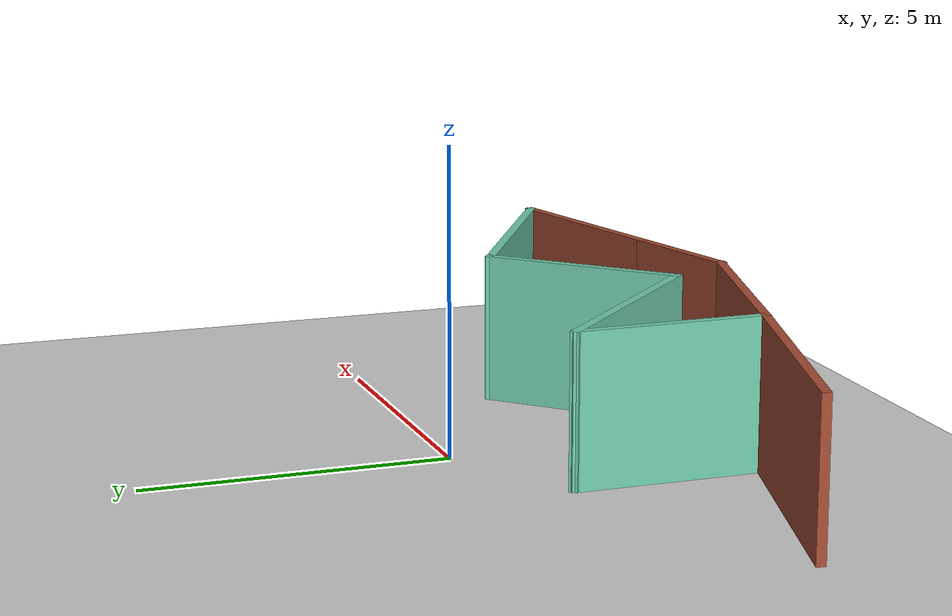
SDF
<sdf version="1.7">
 <world name="default">
  <scene><ambient>0.4 0.4 0.4 1</ambient><background>0.7 0.7 0.7 1</background><shadows>1</shadows></scene>
  <light name="sun" type="directional">
   <pose>0 0 10 0 -0 0</pose>
   <diffuse>0.8 0.8 0.8 1</diffuse>
   <specular>0.2 0.2 0.2 1</specular>
   <attenuation>
    <range>1000</range>
    <constant>0.9</constant>
    <linear>0.01</linear>
    <quadratic>0.001</quadratic>
   </attenuation>
   <direction>-0.5 0.1 -0.9</direction>
   <spot><inner_angle>0</inner_angle><outer_angle>0</outer_angle><falloff>0</falloff></spot>
  </light>
  <model name="ground_plane">
   <static>1</static>
   <link name="link">
    <collision name="collision">
     <geometry><plane><normal>0 0 1</normal><size>100 100</size></plane></geometry>
     <surface>
      <contact><collide_bitmask>65535</collide_bitmask></contact>
      <friction><ode><mu>100</mu><mu2>50</mu2></ode></friction>
     </surface>
    </collision>
    <visual name="visual">
     <cast_shadows>0</cast_shadows>
     <geometry><plane><normal>0 0 1</normal><size>100 100</size></plane></geometry>
     <material>
      <script><uri>file://media/materials/scripts/gazebo.material</uri><name>Gazebo/Grey</name></script>
     </material>
    </visual>
   </link>
  </model>
  <physics type="ode">
   <real_time_update_rate>1000</real_time_update_rate>
   <max_step_size>0.001</max_step_size>
   <real_time_factor>1</real_time_factor>
   <ode>
    <solver>
     <type>quick</type>
     <iters>150</iters>
     <precon_iters>0</precon_iters>
     <sor>1.4</sor>
     <use_dynamic_moi_rescaling>1</use_dynamic_moi_rescaling>
    </solver>
    <constraints>
     <cfm>1e-05</cfm>
     <erp>0.2</erp>
     <contact_max_correcting_vel>2000</contact_max_correcting_vel>
     <contact_surface_layer>0.01</contact_surface_layer>
    </constraints>
   </ode>
  </physics>
  <gravity>0 0 -9.8</gravity>
  <magnetic_field>6e-06 2.3e-05 -4.2e-05</magnetic_field>
  <atmosphere type="adiabatic"/>
  <spherical_coordinates>
   <surface_model>EARTH_WGS84</surface_model>
   <latitude_deg>0</latitude_deg>
   <longitude_deg>0</longitude_deg>
   <elevation>0</elevation>
   <heading_deg>0</heading_deg>
  </spherical_coordinates>
  <model name="my_robot_model"/>
  <light name="sun" type="directional">
   <pose>-62.2011 104.467 10 0 -0 0</pose>
   <diffuse>0.8 0.8 0.8 1</diffuse>
   <specular>0.2 0.2 0.2 1</specular>
   <attenuation>
    <range>1000</range>
    <constant>0.9</constant>
    <linear>0.01</linear>
    <quadratic>0.001</quadratic>
   </attenuation>
   <direction>-0.5 0.1 -0.9</direction>
  </light>
  <light name="sun" type="directional">
   <pose>-76.5867 89.6512 10 0 -0 0</pose>
   <diffuse>0.8 0.8 0.8 1</diffuse>
   <specular>0.2 0.2 0.2 1</specular>
   <attenuation>
    <range>1000</range>
    <constant>0.9</constant>
    <linear>0.01</linear>
    <quadratic>0.001</quadratic>
   </attenuation>
   <direction>-0.5 0.1 -0.9</direction>
  </light>
  <model name="Untitled">
   <pose>0.123734 -2.66637 0 0 -0 0</pose>
   <link name="Wall_0">
    <collision name="Wall_0_Collision">
     <geometry><box><size>3.25 0.15 2.5</size></box></geometry>
     <pose>0 0 1.25 0 -0 0</pose>
    </collision>
    <visual name="Wall_0_Visual">
     <pose>0 0 1.25 0 -0 0</pose>
     <geometry><box><size>3.25 0.15 2.5</size></box></geometry>
     <material>
      <script><uri>file://media/materials/scripts/gazebo.material</uri><name>Gazebo/Grey</name></script>
      <ambient>0.435294 0.796078 0.67451 1</ambient>
     </material>
     <meta><layer>0</layer></meta>
    </visual>
    <pose>-2.31373 -0.133625 0 0 -0 1.5708</pose>
   </link>
   <link name="Wall_1">
    <collision name="Wall_1_Collision">
     <geometry><box><size>4.25 0.15 2.5</size></box></geometry>
     <pose>0 0 1.25 0 -0 0</pose>
    </collision>
    <visual name="Wall_1_Visual">
     <pose>0 0 1.25 0 -0 0</pose>
     <geometry><box><size>4.25 0.15 2.5</size></box></geometry>
     <material>
      <script><uri>file://media/materials/scripts/gazebo.material</uri><name>Gazebo/Grey</name></script>
      <ambient>0.435294 0.796078 0.67451 1</ambient>
     </material>
     <meta><layer>0</layer></meta>
    </visual>
    <pose>-0.864165 -0.033194 0 0 -0 -0.785398</pose>
   </link>
   <link name="Wall_2">
    <collision name="Wall_2_Collision">
     <geometry><box><size>3.5 0.15 2.5</size></box></geometry>
     <pose>0 0 1.25 0 -0 0</pose>
    </collision>
    <visual name="Wall_2_Visual">
     <pose>0 0 1.25 0 -0 0</pose>
     <geometry><box><size>3.5 0.15 2.5</size></box></geometry>
     <material>
      <script><uri>file://media/materials/scripts/gazebo.material</uri><name>Gazebo/Grey</name></script>
      <ambient>0.435294 0.796078 0.67451 1</ambient>
     </material>
     <meta><layer>0</layer></meta>
    </visual>
    <pose>1.76981 -0.298359 0 0 -0 0.785398</pose>
   </link>
   <link name="Wall_3">
    <collision name="Wall_3_Collision">
     <geometry><box><size>4.25 0.15 2.5</size></box></geometry>
     <pose>0 0 1.25 0 -0 0</pose>
    </collision>
    <visual name="Wall_3_Visual">
     <pose>0 0 1.25 0 -0 0</pose>
     <geometry><box><size>4.25 0.15 2.5</size></box></geometry>
     <material>
      <script><uri>file://media/materials/scripts/gazebo.material</uri><name>Gazebo/Grey</name></script>
      <ambient>0.435294 0.796078 0.67451 1</ambient>
     </material>
     <meta><layer>0</layer></meta>
    </visual>
    <pose>4.72956 -0.138955 0 0 -0 -0.523599</pose>
   </link>
   <link name="Wall_4">
    <collision name="Wall_4_Collision">
     <geometry><box><size>3.5 0.15 2.5</size></box></geometry>
     <pose>0 0 1.25 0 -0 0</pose>
    </collision>
    <visual name="Wall_4_Visual">
     <pose>0 0 1.25 0 -0 0</pose>
     <geometry><box><size>3.5 0.15 2.5</size></box></geometry>
     <material>
      <script><uri>file://media/materials/scripts/gazebo.material</uri><name>Gazebo/Bricks</name></script>
      <ambient>1 1 1 1</ambient>
     </material>
     <meta><layer>0</layer></meta>
    </visual>
    <pose>4.88699 -1.59748 0 0 -0 -2.87979</pose>
   </link>
   <link name="Wall_5">
    <collision name="Wall_5_Collision">
     <geometry><box><size>2.25 0.15 2.5</size></box></geometry>
     <pose>0 0 1.25 0 -0 0</pose>
    </collision>
    <visual name="Wall_5_Visual">
     <pose>0 0 1.25 0 -0 0</pose>
     <geometry><box><size>2.25 0.15 2.5</size></box></geometry>
     <material>
      <script><uri>file://media/materials/scripts/gazebo.material</uri><name>Gazebo/Bricks</name></script>
      <ambient>1 1 1 1</ambient>
     </material>
     <meta><layer>0</layer></meta>
    </visual>
    <pose>2.25484 -2.30276 0 0 -0 -2.87979</pose>
   </link>
   <link name="Wall_6">
    <collision name="Wall_6_Collision">
     <geometry><box><size>3.8143 0.15 2.5</size></box></geometry>
     <pose>0 0 1.25 0 -0 0</pose>
    </collision>
    <visual name="Wall_6_Visual">
     <pose>0 0 1.25 0 -0 0</pose>
     <geometry><box><size>3.8143 0.15 2.5</size></box></geometry>
     <material>
      <script><uri>file://media/materials/scripts/gazebo.material</uri><name>Gazebo/Bricks</name></script>
      <ambient>1 1 1 1</ambient>
     </material>
     <meta><layer>0</layer></meta>
    </visual>
    <pose>-0.536557 -2.12907 0 0 -0 2.896</pose>
   </link>
   <link name="Wall_7">
    <collision name="Wall_7_Collision">
     <geometry><box><size>4.5 0.15 2.5</size></box></geometry>
     <pose>0 0 1.25 0 -0 0</pose>
    </collision>
    <visual name="Wall_7_Visual">
     <pose>0 0 1.25 0 -0 0</pose>
     <geometry><box><size>4.5 0.15 2.5</size></box></geometry>
     <material>
      <script><uri>file://media/materials/scripts/gazebo.material</uri><name>Gazebo/Bricks</name></script>
      <ambient>1 1 1 1</ambient>
     </material>
     <meta><layer>0</layer></meta>
    </visual>
    <pose>-4.41462 -1.12069 0 0 -0 2.87979</pose>
   </link>
   <static>1</static>
  </model>
 </world>
</sdf>
